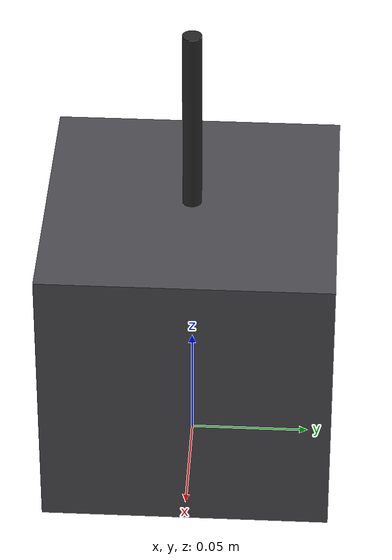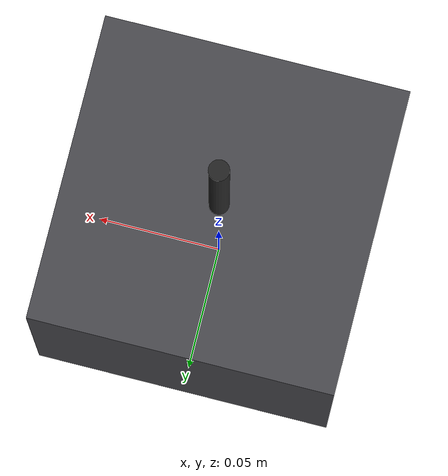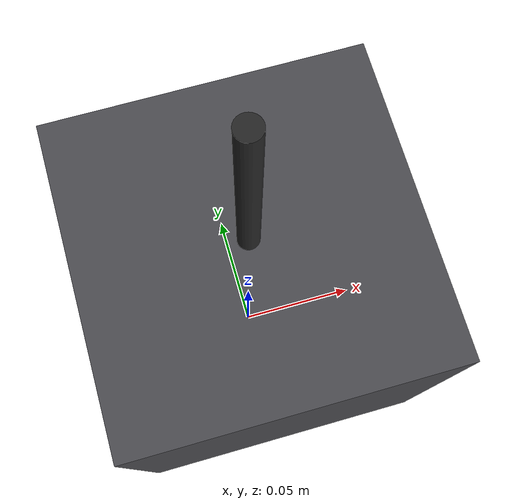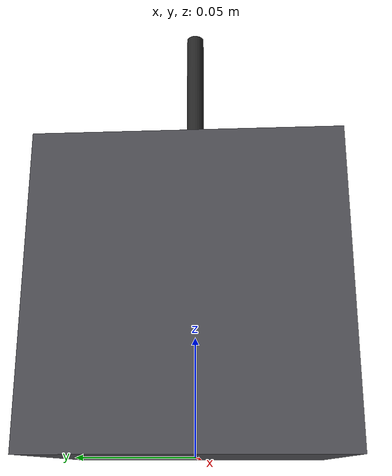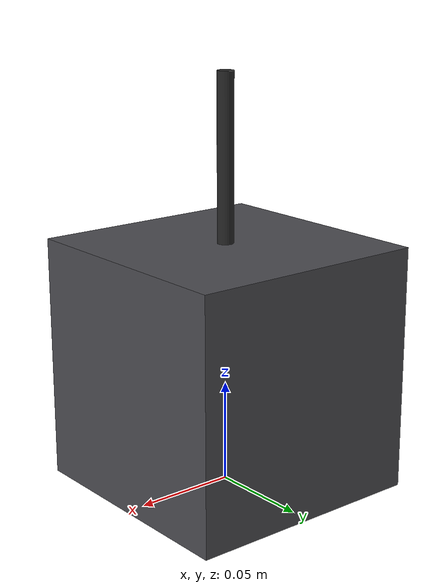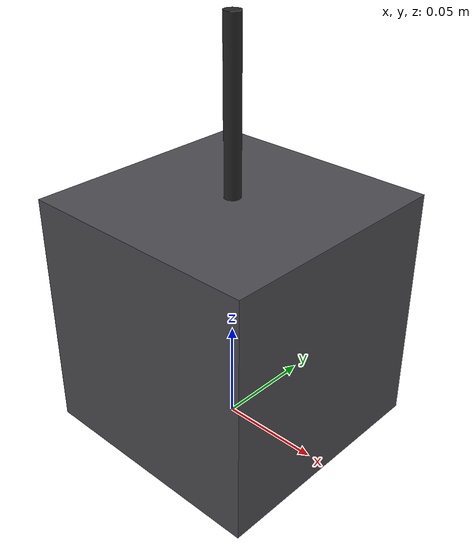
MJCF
<?xml version="1.0" encoding="utf-8"?>
<mujoco model="viscosity_index_tester">
  <compiler angle="radian" autolimits="true"/>
  <default>
    <default class="body"><geom contype="1" conaffinity="1"/></default>
  </default>
  <worldbody>
    <body name="base">
      <geom type="box" size="0.06 0.06 0.06" pos="0 0 0.06" rgba="0.3 0.3 0.32 1" class="body"/>
      <body name="stirrer" pos="0 0 0.14">
        <joint name="stirrer_joint" type="hinge" axis="0 0 1" range="-3.14159 3.14159" damping="0.1" frictionloss="0.05"/>
  <geom type="cylinder" size="0.004 0.06" pos="0 0 0" rgba="0.15 0.15 0.15 1" class="body"/>
      </body>
    </body>
  </worldbody>
</mujoco>
